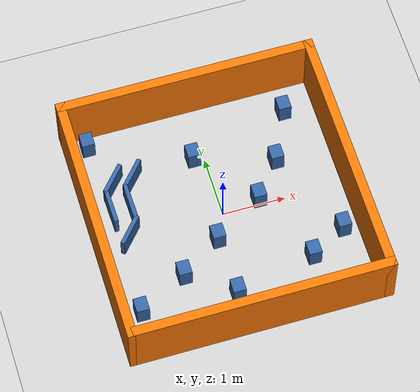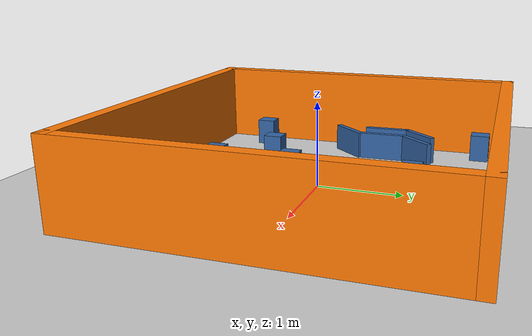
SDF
<sdf version="1.6">
 <world name="default">
  <light name="sun" type="directional">
   <pose>0 0 10 0 -0 0</pose>
   <diffuse>0.8 0.8 0.8 1</diffuse>
   <specular>0.2 0.2 0.2 1</specular>
   <attenuation>
    <range>1000</range>
    <constant>0.9</constant>
    <linear>0.01</linear>
    <quadratic>0.001</quadratic>
   </attenuation>
   <direction>-0.5 0.1 -0.9</direction>
  </light>
  <model name="ground_plane">
   <static>1</static>
   <link name="link">
    <collision name="collision">
     <geometry><plane><normal>0 0 1</normal><size>100 100</size></plane></geometry>
     <surface>
      <contact><collide_bitmask>65535</collide_bitmask></contact>
      <friction><ode><mu>100</mu><mu2>50</mu2></ode></friction>
     </surface>
    </collision>
    <visual name="visual">
     <cast_shadows>0</cast_shadows>
     <geometry><plane><normal>0 0 1</normal><size>100 100</size></plane></geometry>
     <material>
      <script><uri>file://media/materials/scripts/gazebo.material</uri><name>Gazebo/Grey</name></script>
     </material>
    </visual>
   </link>
  </model>
  <gravity>0 0 -9.8</gravity>
  <magnetic_field>6e-06 2.3e-05 -4.2e-05</magnetic_field>
  <atmosphere type="adiabatic"/>
  <physics name="default_physics" default="0" type="ode">
   <max_step_size>0.001</max_step_size>
   <real_time_factor>1</real_time_factor>
   <real_time_update_rate>1000</real_time_update_rate>
  </physics>
  <scene><ambient>0.4 0.4 0.4 1</ambient><background>0.7 0.7 0.7 1</background><shadows>1</shadows></scene>
  <audio><device>default</device></audio>
  <spherical_coordinates>
   <surface_model>EARTH_WGS84</surface_model>
   <latitude_deg>0</latitude_deg>
   <longitude_deg>0</longitude_deg>
   <elevation>0</elevation>
   <heading_deg>0</heading_deg>
  </spherical_coordinates>
  <model name="small">
   <link name="Wall_0">
    <collision name="Wall_0_Collision">
     <geometry><box><size>4.15 0.15 1</size></box></geometry>
     <pose>0 0 0.5 0 -0 0</pose>
    </collision>
    <visual name="Wall_0_Visual">
     <pose>0 0 0.5 0 -0 0</pose>
     <geometry><box><size>4.15 0.15 1</size></box></geometry>
     <material>
      <script><uri>file://media/materials/scripts/gazebo.material</uri><name>Gazebo/Grey</name></script>
      <ambient>0.996078 0.47451 0.0196078 1</ambient>
     </material>
     <meta><layer>0</layer></meta>
    </visual>
    <pose>-2 0 0 0 -0 -1.5708</pose>
   </link>
   <link name="Wall_1">
    <collision name="Wall_1_Collision">
     <geometry><box><size>4.15 0.15 1</size></box></geometry>
     <pose>0 0 0.5 0 -0 0</pose>
    </collision>
    <visual name="Wall_1_Visual">
     <pose>0 0 0.5 0 -0 0</pose>
     <geometry><box><size>4.15 0.15 1</size></box></geometry>
     <material>
      <script><uri>file://media/materials/scripts/gazebo.material</uri><name>Gazebo/Grey</name></script>
      <ambient>0.996078 0.47451 0.0196078 1</ambient>
     </material>
     <meta><layer>0</layer></meta>
    </visual>
    <pose>0 -2 0 0 -0 0</pose>
   </link>
   <link name="Wall_2">
    <collision name="Wall_2_Collision">
     <geometry><box><size>4.15 0.15 1</size></box></geometry>
     <pose>0 0 0.5 0 -0 0</pose>
    </collision>
    <visual name="Wall_2_Visual">
     <pose>0 0 0.5 0 -0 0</pose>
     <geometry><box><size>4.15 0.15 1</size></box></geometry>
     <material>
      <script><uri>file://media/materials/scripts/gazebo.material</uri><name>Gazebo/Grey</name></script>
      <ambient>0.996078 0.47451 0.0196078 1</ambient>
     </material>
     <meta><layer>0</layer></meta>
    </visual>
    <pose>2 0 0 0 -0 1.5708</pose>
   </link>
   <link name="Wall_3">
    <collision name="Wall_3_Collision">
     <geometry><box><size>4.15 0.15 1</size></box></geometry>
     <pose>0 0 0.5 0 -0 0</pose>
    </collision>
    <visual name="Wall_3_Visual">
     <pose>0 0 0.5 0 -0 0</pose>
     <geometry><box><size>4.15 0.15 1</size></box></geometry>
     <material>
      <script><uri>file://media/materials/scripts/gazebo.material</uri><name>Gazebo/Grey</name></script>
      <ambient>0.996078 0.47451 0.0196078 1</ambient>
     </material>
     <meta><layer>0</layer></meta>
    </visual>
    <pose>0 2 0 0 -0 3.14159</pose>
   </link>
   <static>1</static>
  </model>
  <model name="Obstacle1">
   <link name="link_0">
    <inertial>
     <mass>0.0160626</mass>
     <inertia>
      <ixx>0.000232012</ixx>
      <ixy>0</ixy>
      <ixz>0</ixz>
      <iyy>0.000212388</iyy>
      <iyz>0</iyz>
      <izz>0.000126374</izz>
     </inertia>
    </inertial>
    <visual name="visual">
     <geometry><box><size>0.199687 0.233529 0.344666</size></box></geometry>
     <material>
      <lighting>1</lighting>
      <script><uri>file://media/materials/scripts/gazebo.material</uri><name>Gazebo/Grey</name></script>
      <shader type="vertex"><normal_map>__default__</normal_map></shader>
      <ambient>0.204 0.396 0.643 1</ambient>
      <diffuse>0.204 0.396 0.643 1</diffuse>
      <specular>0.204 0.396 0.643 1</specular>
      <emissive>0.204 0.396 0.643 1</emissive>
     </material>
    </visual>
    <collision name="collision">
     <geometry><box><size>0.199687 0.233529 0.344666</size></box></geometry>
     <surface>
      <friction>
       <ode><mu>1</mu><mu2>1</mu2><fdir1>0 0 0</fdir1><slip1>0</slip1><slip2>0</slip2></ode>
       <torsional>
        <coefficient>1</coefficient>
        <patch_radius>0</patch_radius>
        <surface_radius>0</surface_radius>
        <use_patch_radius>1</use_patch_radius>
        <ode><slip>0</slip></ode>
       </torsional>
      </friction>
      <bounce><restitution_coefficient>0</restitution_coefficient><threshold>1e+06</threshold></bounce>
      <contact>
       <collide_without_contact>0</collide_without_contact>
       <collide_without_contact_bitmask>1</collide_without_contact_bitmask>
       <collide_bitmask>1</collide_bitmask>
       <ode>
        <soft_cfm>0</soft_cfm>
        <soft_erp>0.2</soft_erp>
        <kp>1e+13</kp>
        <kd>1</kd>
        <max_vel>0.01</max_vel>
        <min_depth>0</min_depth>
       </ode>
       <bullet>
        <split_impulse>1</split_impulse>
        <split_impulse_penetration_threshold>-0.01</split_impulse_penetration_threshold>
        <soft_cfm>0</soft_cfm>
        <soft_erp>0.2</soft_erp>
        <kp>1e+13</kp>
        <kd>1</kd>
       </bullet>
      </contact>
     </surface>
    </collision>
   </link>
   <static>0</static>
   <pose>-0.176645 1.05764 0.161787 0 -0 0</pose>
  </model>
  <model name="Obstacle1_clone">
   <link name="link_0">
    <inertial>
     <mass>0.0160626</mass>
     <inertia>
      <ixx>0.000232012</ixx>
      <ixy>0</ixy>
      <ixz>0</ixz>
      <iyy>0.000212388</iyy>
      <iyz>0</iyz>
      <izz>0.000126374</izz>
     </inertia>
    </inertial>
    <visual name="visual">
     <geometry><box><size>0.199687 0.233529 0.344666</size></box></geometry>
     <material>
      <lighting>1</lighting>
      <script><uri>file://media/materials/scripts/gazebo.material</uri><name>Gazebo/Grey</name></script>
      <shader type="vertex"><normal_map>__default__</normal_map></shader>
      <ambient>0.204 0.396 0.643 1</ambient>
      <diffuse>0.204 0.396 0.643 1</diffuse>
      <specular>0.204 0.396 0.643 1</specular>
      <emissive>0.204 0.396 0.643 1</emissive>
     </material>
    </visual>
    <collision name="collision">
     <geometry><box><size>0.199687 0.233529 0.344666</size></box></geometry>
     <surface>
      <friction>
       <ode><mu>1</mu><mu2>1</mu2><fdir1>0 0 0</fdir1><slip1>0</slip1><slip2>0</slip2></ode>
       <torsional>
        <coefficient>1</coefficient>
        <patch_radius>0</patch_radius>
        <surface_radius>0</surface_radius>
        <use_patch_radius>1</use_patch_radius>
        <ode><slip>0</slip></ode>
       </torsional>
      </friction>
      <bounce><restitution_coefficient>0</restitution_coefficient><threshold>1e+06</threshold></bounce>
      <contact>
       <collide_without_contact>0</collide_without_contact>
       <collide_without_contact_bitmask>1</collide_without_contact_bitmask>
       <collide_bitmask>1</collide_bitmask>
       <ode>
        <soft_cfm>0</soft_cfm>
        <soft_erp>0.2</soft_erp>
        <kp>1e+13</kp>
        <kd>1</kd>
        <max_vel>0.01</max_vel>
        <min_depth>0</min_depth>
       </ode>
       <bullet>
        <split_impulse>1</split_impulse>
        <split_impulse_penetration_threshold>-0.01</split_impulse_penetration_threshold>
        <soft_cfm>0</soft_cfm>
        <soft_erp>0.2</soft_erp>
        <kp>1e+13</kp>
        <kd>1</kd>
       </bullet>
      </contact>
     </surface>
    </collision>
   </link>
   <static>0</static>
   <pose>0.598237 0.083541 0.161787 0 -0 0</pose>
  </model>
  <model name="Obstacle1_clone_0">
   <link name="link_0">
    <inertial>
     <mass>0.0160626</mass>
     <inertia>
      <ixx>0.000232012</ixx>
      <ixy>0</ixy>
      <ixz>0</ixz>
      <iyy>0.000212388</iyy>
      <iyz>0</iyz>
      <izz>0.000126374</izz>
     </inertia>
    </inertial>
    <visual name="visual">
     <geometry><box><size>0.199687 0.233529 0.344666</size></box></geometry>
     <material>
      <lighting>1</lighting>
      <script><uri>file://media/materials/scripts/gazebo.material</uri><name>Gazebo/Grey</name></script>
      <shader type="vertex"><normal_map>__default__</normal_map></shader>
      <ambient>0.204 0.396 0.643 1</ambient>
      <diffuse>0.204 0.396 0.643 1</diffuse>
      <specular>0.204 0.396 0.643 1</specular>
      <emissive>0.204 0.396 0.643 1</emissive>
     </material>
    </visual>
    <collision name="collision">
     <geometry><box><size>0.199687 0.233529 0.344666</size></box></geometry>
     <surface>
      <friction>
       <ode><mu>1</mu><mu2>1</mu2><fdir1>0 0 0</fdir1><slip1>0</slip1><slip2>0</slip2></ode>
       <torsional>
        <coefficient>1</coefficient>
        <patch_radius>0</patch_radius>
        <surface_radius>0</surface_radius>
        <use_patch_radius>1</use_patch_radius>
        <ode><slip>0</slip></ode>
       </torsional>
      </friction>
      <bounce><restitution_coefficient>0</restitution_coefficient><threshold>1e+06</threshold></bounce>
      <contact>
       <collide_without_contact>0</collide_without_contact>
       <collide_without_contact_bitmask>1</collide_without_contact_bitmask>
       <collide_bitmask>1</collide_bitmask>
       <ode>
        <soft_cfm>0</soft_cfm>
        <soft_erp>0.2</soft_erp>
        <kp>1e+13</kp>
        <kd>1</kd>
        <max_vel>0.01</max_vel>
        <min_depth>0</min_depth>
       </ode>
       <bullet>
        <split_impulse>1</split_impulse>
        <split_impulse_penetration_threshold>-0.01</split_impulse_penetration_threshold>
        <soft_cfm>0</soft_cfm>
        <soft_erp>0.2</soft_erp>
        <kp>1e+13</kp>
        <kd>1</kd>
       </bullet>
      </contact>
     </surface>
    </collision>
   </link>
   <static>0</static>
   <pose>-0.883639 -0.871921 0.161787 0 -0 0</pose>
  </model>
  <model name="Obstacle1_clone_1">
   <link name="link_0">
    <inertial>
     <mass>0.0160626</mass>
     <inertia>
      <ixx>0.000232012</ixx>
      <ixy>0</ixy>
      <ixz>0</ixz>
      <iyy>0.000212388</iyy>
      <iyz>0</iyz>
      <izz>0.000126374</izz>
     </inertia>
    </inertial>
    <visual name="visual">
     <geometry><box><size>0.199687 0.233529 0.344666</size></box></geometry>
     <material>
      <lighting>1</lighting>
      <script><uri>file://media/materials/scripts/gazebo.material</uri><name>Gazebo/Grey</name></script>
      <shader type="vertex"><normal_map>__default__</normal_map></shader>
      <ambient>0.204 0.396 0.643 1</ambient>
      <diffuse>0.204 0.396 0.643 1</diffuse>
      <specular>0.204 0.396 0.643 1</specular>
      <emissive>0.204 0.396 0.643 1</emissive>
     </material>
    </visual>
    <collision name="collision">
     <geometry><box><size>0.199687 0.233529 0.344666</size></box></geometry>
     <surface>
      <friction>
       <ode><mu>1</mu><mu2>1</mu2><fdir1>0 0 0</fdir1><slip1>0</slip1><slip2>0</slip2></ode>
       <torsional>
        <coefficient>1</coefficient>
        <patch_radius>0</patch_radius>
        <surface_radius>0</surface_radius>
        <use_patch_radius>1</use_patch_radius>
        <ode><slip>0</slip></ode>
       </torsional>
      </friction>
      <bounce><restitution_coefficient>0</restitution_coefficient><threshold>1e+06</threshold></bounce>
      <contact>
       <collide_without_contact>0</collide_without_contact>
       <collide_without_contact_bitmask>1</collide_without_contact_bitmask>
       <collide_bitmask>1</collide_bitmask>
       <ode>
        <soft_cfm>0</soft_cfm>
        <soft_erp>0.2</soft_erp>
        <kp>1e+13</kp>
        <kd>1</kd>
        <max_vel>0.01</max_vel>
        <min_depth>0</min_depth>
       </ode>
       <bullet>
        <split_impulse>1</split_impulse>
        <split_impulse_penetration_threshold>-0.01</split_impulse_penetration_threshold>
        <soft_cfm>0</soft_cfm>
        <soft_erp>0.2</soft_erp>
        <kp>1e+13</kp>
        <kd>1</kd>
       </bullet>
      </contact>
     </surface>
    </collision>
   </link>
   <static>0</static>
   <pose>-1.69951 1.71749 0.161787 0 -0 0</pose>
  </model>
  <model name="Obstacle1_clone_2">
   <link name="link_0">
    <inertial>
     <mass>0.0160626</mass>
     <inertia>
      <ixx>0.000232012</ixx>
      <ixy>0</ixy>
      <ixz>0</ixz>
      <iyy>0.000212388</iyy>
      <iyz>0</iyz>
      <izz>0.000126374</izz>
     </inertia>
    </inertial>
    <visual name="visual">
     <geometry><box><size>0.199687 0.233529 0.344666</size></box></geometry>
     <material>
      <lighting>1</lighting>
      <script><uri>file://media/materials/scripts/gazebo.material</uri><name>Gazebo/Grey</name></script>
      <shader type="vertex"><normal_map>__default__</normal_map></shader>
      <ambient>0.204 0.396 0.643 1</ambient>
      <diffuse>0.204 0.396 0.643 1</diffuse>
      <specular>0.204 0.396 0.643 1</specular>
      <emissive>0.204 0.396 0.643 1</emissive>
     </material>
    </visual>
    <collision name="collision">
     <geometry><box><size>0.199687 0.233529 0.344666</size></box></geometry>
     <surface>
      <friction>
       <ode><mu>1</mu><mu2>1</mu2><fdir1>0 0 0</fdir1><slip1>0</slip1><slip2>0</slip2></ode>
       <torsional>
        <coefficient>1</coefficient>
        <patch_radius>0</patch_radius>
        <surface_radius>0</surface_radius>
        <use_patch_radius>1</use_patch_radius>
        <ode><slip>0</slip></ode>
       </torsional>
      </friction>
      <bounce><restitution_coefficient>0</restitution_coefficient><threshold>1e+06</threshold></bounce>
      <contact>
       <collide_without_contact>0</collide_without_contact>
       <collide_without_contact_bitmask>1</collide_without_contact_bitmask>
       <collide_bitmask>1</collide_bitmask>
       <ode>
        <soft_cfm>0</soft_cfm>
        <soft_erp>0.2</soft_erp>
        <kp>1e+13</kp>
        <kd>1</kd>
        <max_vel>0.01</max_vel>
        <min_depth>0</min_depth>
       </ode>
       <bullet>
        <split_impulse>1</split_impulse>
        <split_impulse_penetration_threshold>-0.01</split_impulse_penetration_threshold>
        <soft_cfm>0</soft_cfm>
        <soft_erp>0.2</soft_erp>
        <kp>1e+13</kp>
        <kd>1</kd>
       </bullet>
      </contact>
     </surface>
    </collision>
   </link>
   <static>0</static>
   <pose>-0.21086 -0.418117 0.161787 0 -0 0</pose>
  </model>
  <model name="Obstacle1_clone_3">
   <link name="link_0">
    <inertial>
     <mass>0.0160626</mass>
     <inertia>
      <ixx>0.000232012</ixx>
      <ixy>0</ixy>
      <ixz>0</ixz>
      <iyy>0.000212388</iyy>
      <iyz>0</iyz>
      <izz>0.000126374</izz>
     </inertia>
    </inertial>
    <visual name="visual">
     <geometry><box><size>0.199687 0.233529 0.344666</size></box></geometry>
     <material>
      <lighting>1</lighting>
      <script><uri>file://media/materials/scripts/gazebo.material</uri><name>Gazebo/Grey</name></script>
      <shader type="vertex"><normal_map>__default__</normal_map></shader>
      <ambient>0.204 0.396 0.643 1</ambient>
      <diffuse>0.204 0.396 0.643 1</diffuse>
      <specular>0.204 0.396 0.643 1</specular>
      <emissive>0.204 0.396 0.643 1</emissive>
     </material>
    </visual>
    <collision name="collision">
     <geometry><box><size>0.199687 0.233529 0.344666</size></box></geometry>
     <surface>
      <friction>
       <ode><mu>1</mu><mu2>1</mu2><fdir1>0 0 0</fdir1><slip1>0</slip1><slip2>0</slip2></ode>
       <torsional>
        <coefficient>1</coefficient>
        <patch_radius>0</patch_radius>
        <surface_radius>0</surface_radius>
        <use_patch_radius>1</use_patch_radius>
        <ode><slip>0</slip></ode>
       </torsional>
      </friction>
      <bounce><restitution_coefficient>0</restitution_coefficient><threshold>1e+06</threshold></bounce>
      <contact>
       <collide_without_contact>0</collide_without_contact>
       <collide_without_contact_bitmask>1</collide_without_contact_bitmask>
       <collide_bitmask>1</collide_bitmask>
       <ode>
        <soft_cfm>0</soft_cfm>
        <soft_erp>0.2</soft_erp>
        <kp>1e+13</kp>
        <kd>1</kd>
        <max_vel>0.01</max_vel>
        <min_depth>0</min_depth>
       </ode>
       <bullet>
        <split_impulse>1</split_impulse>
        <split_impulse_penetration_threshold>-0.01</split_impulse_penetration_threshold>
        <soft_cfm>0</soft_cfm>
        <soft_erp>0.2</soft_erp>
        <kp>1e+13</kp>
        <kd>1</kd>
       </bullet>
      </contact>
     </surface>
    </collision>
   </link>
   <static>0</static>
   <pose>1.10388 -1.10429 0.161787 0 -0 0</pose>
  </model>
  <model name="Obstacle1_clone_4">
   <link name="link_0">
    <inertial>
     <mass>0.0160626</mass>
     <inertia>
      <ixx>0.000232012</ixx>
      <ixy>0</ixy>
      <ixz>0</ixz>
      <iyy>0.000212388</iyy>
      <iyz>0</iyz>
      <izz>0.000126374</izz>
     </inertia>
    </inertial>
    <visual name="visual">
     <geometry><box><size>0.525188 0.067149 0.344666</size></box></geometry>
     <material>
      <lighting>1</lighting>
      <script><uri>file://media/materials/scripts/gazebo.material</uri><name>Gazebo/Grey</name></script>
      <shader type="vertex"><normal_map>__default__</normal_map></shader>
      <ambient>0.204 0.396 0.643 1</ambient>
      <diffuse>0.204 0.396 0.643 1</diffuse>
      <specular>0.204 0.396 0.643 1</specular>
      <emissive>0.204 0.396 0.643 1</emissive>
     </material>
    </visual>
    <collision name="collision">
     <geometry><box><size>0.525188 0.067149 0.344666</size></box></geometry>
     <surface>
      <friction>
       <ode><mu>1</mu><mu2>1</mu2><fdir1>0 0 0</fdir1><slip1>0</slip1><slip2>0</slip2></ode>
       <torsional>
        <coefficient>1</coefficient>
        <patch_radius>0</patch_radius>
        <surface_radius>0</surface_radius>
        <use_patch_radius>1</use_patch_radius>
        <ode><slip>0</slip></ode>
       </torsional>
      </friction>
      <bounce><restitution_coefficient>0</restitution_coefficient><threshold>1e+06</threshold></bounce>
      <contact>
       <collide_without_contact>0</collide_without_contact>
       <collide_without_contact_bitmask>1</collide_without_contact_bitmask>
       <collide_bitmask>1</collide_bitmask>
       <ode>
        <soft_cfm>0</soft_cfm>
        <soft_erp>0.2</soft_erp>
        <kp>1e+13</kp>
        <kd>1</kd>
        <max_vel>0.01</max_vel>
        <min_depth>0</min_depth>
       </ode>
       <bullet>
        <split_impulse>1</split_impulse>
        <split_impulse_penetration_threshold>-0.01</split_impulse_penetration_threshold>
        <soft_cfm>0</soft_cfm>
        <soft_erp>0.2</soft_erp>
        <kp>1e+13</kp>
        <kd>1</kd>
       </bullet>
      </contact>
     </surface>
    </collision>
   </link>
   <static>0</static>
   <pose>-1.49868 0.937012 0.161787 0 -0 0.854446</pose>
  </model>
  <model name="Obstacle1_clone_4_clone">
   <link name="link_0">
    <inertial>
     <mass>0.0160626</mass>
     <inertia>
      <ixx>0.000232012</ixx>
      <ixy>0</ixy>
      <ixz>0</ixz>
      <iyy>0.000212388</iyy>
      <iyz>0</iyz>
      <izz>0.000126374</izz>
     </inertia>
    </inertial>
    <visual name="visual">
     <geometry><box><size>0.584747 0.067149 0.344666</size></box></geometry>
     <material>
      <lighting>1</lighting>
      <script><uri>file://media/materials/scripts/gazebo.material</uri><name>Gazebo/Grey</name></script>
      <shader type="vertex"><normal_map>__default__</normal_map></shader>
      <ambient>0.204 0.396 0.643 1</ambient>
      <diffuse>0.204 0.396 0.643 1</diffuse>
      <specular>0.204 0.396 0.643 1</specular>
      <emissive>0.204 0.396 0.643 1</emissive>
     </material>
    </visual>
    <collision name="collision">
     <geometry><box><size>0.584747 0.067149 0.344666</size></box></geometry>
     <surface>
      <friction>
       <ode><mu>1</mu><mu2>1</mu2><fdir1>0 0 0</fdir1><slip1>0</slip1><slip2>0</slip2></ode>
       <torsional>
        <coefficient>1</coefficient>
        <patch_radius>0</patch_radius>
        <surface_radius>0</surface_radius>
        <use_patch_radius>1</use_patch_radius>
        <ode><slip>0</slip></ode>
       </torsional>
      </friction>
      <bounce><restitution_coefficient>0</restitution_coefficient><threshold>1e+06</threshold></bounce>
      <contact>
       <collide_without_contact>0</collide_without_contact>
       <collide_without_contact_bitmask>1</collide_without_contact_bitmask>
       <collide_bitmask>1</collide_bitmask>
       <ode>
        <soft_cfm>0</soft_cfm>
        <soft_erp>0.2</soft_erp>
        <kp>1e+13</kp>
        <kd>1</kd>
        <max_vel>0.01</max_vel>
        <min_depth>0</min_depth>
       </ode>
       <bullet>
        <split_impulse>1</split_impulse>
        <split_impulse_penetration_threshold>-0.01</split_impulse_penetration_threshold>
        <soft_cfm>0</soft_cfm>
        <soft_erp>0.2</soft_erp>
        <kp>1e+13</kp>
        <kd>1</kd>
       </bullet>
      </contact>
     </surface>
    </collision>
   </link>
   <static>0</static>
   <pose>-1.6489 0.483125 0.161787 0 -0 1.58693</pose>
  </model>
  <model name="Obstacle1_clone_4_clone_clone">
   <link name="link_0">
    <inertial>
     <mass>0.0160626</mass>
     <inertia>
      <ixx>0.000232012</ixx>
      <ixy>0</ixy>
      <ixz>0</ixz>
      <iyy>0.000212388</iyy>
      <iyz>0</iyz>
      <izz>0.000126374</izz>
     </inertia>
    </inertial>
    <visual name="visual">
     <geometry><box><size>0.584746 0.067149 0.344666</size></box></geometry>
     <material>
      <lighting>1</lighting>
      <script><uri>file://media/materials/scripts/gazebo.material</uri><name>Gazebo/Grey</name></script>
      <shader type="vertex"><normal_map>__default__</normal_map></shader>
      <ambient>0.204 0.396 0.643 1</ambient>
      <diffuse>0.204 0.396 0.643 1</diffuse>
      <specular>0.204 0.396 0.643 1</specular>
      <emissive>0.204 0.396 0.643 1</emissive>
     </material>
    </visual>
    <collision name="collision">
     <geometry><box><size>0.584746 0.067149 0.344666</size></box></geometry>
     <surface>
      <friction>
       <ode><mu>1</mu><mu2>1</mu2><fdir1>0 0 0</fdir1><slip1>0</slip1><slip2>0</slip2></ode>
       <torsional>
        <coefficient>1</coefficient>
        <patch_radius>0</patch_radius>
        <surface_radius>0</surface_radius>
        <use_patch_radius>1</use_patch_radius>
        <ode><slip>0</slip></ode>
       </torsional>
      </friction>
      <bounce><restitution_coefficient>0</restitution_coefficient><threshold>1e+06</threshold></bounce>
      <contact>
       <collide_without_contact>0</collide_without_contact>
       <collide_without_contact_bitmask>1</collide_without_contact_bitmask>
       <collide_bitmask>1</collide_bitmask>
       <ode>
        <soft_cfm>0</soft_cfm>
        <soft_erp>0.2</soft_erp>
        <kp>1e+13</kp>
        <kd>1</kd>
        <max_vel>0.01</max_vel>
        <min_depth>0</min_depth>
       </ode>
       <bullet>
        <split_impulse>1</split_impulse>
        <split_impulse_penetration_threshold>-0.01</split_impulse_penetration_threshold>
        <soft_cfm>0</soft_cfm>
        <soft_erp>0.2</soft_erp>
        <kp>1e+13</kp>
        <kd>1</kd>
       </bullet>
      </contact>
     </surface>
    </collision>
   </link>
   <static>0</static>
   <pose>-1.34273 0.476604 0.161787 0 -0 1.58693</pose>
  </model>
  <model name="Obstacle1_clone_0_clone">
   <link name="link_0">
    <inertial>
     <mass>0.0160626</mass>
     <inertia>
      <ixx>0.000232012</ixx>
      <ixy>0</ixy>
      <ixz>0</ixz>
      <iyy>0.000212388</iyy>
      <iyz>0</iyz>
      <izz>0.000126374</izz>
     </inertia>
    </inertial>
    <visual name="visual">
     <geometry><box><size>0.199687 0.233529 0.344666</size></box></geometry>
     <material>
      <lighting>1</lighting>
      <script><uri>file://media/materials/scripts/gazebo.material</uri><name>Gazebo/Grey</name></script>
      <shader type="vertex"><normal_map>__default__</normal_map></shader>
      <ambient>0.204 0.396 0.643 1</ambient>
      <diffuse>0.204 0.396 0.643 1</diffuse>
      <specular>0.204 0.396 0.643 1</specular>
      <emissive>0.204 0.396 0.643 1</emissive>
     </material>
    </visual>
    <collision name="collision">
     <geometry><box><size>0.199687 0.233529 0.344666</size></box></geometry>
     <surface>
      <friction>
       <ode><mu>1</mu><mu2>1</mu2><fdir1>0 0 0</fdir1><slip1>0</slip1><slip2>0</slip2></ode>
       <torsional>
        <coefficient>1</coefficient>
        <patch_radius>0</patch_radius>
        <surface_radius>0</surface_radius>
        <use_patch_radius>1</use_patch_radius>
        <ode><slip>0</slip></ode>
       </torsional>
      </friction>
      <bounce><restitution_coefficient>0</restitution_coefficient><threshold>1e+06</threshold></bounce>
      <contact>
       <collide_without_contact>0</collide_without_contact>
       <collide_without_contact_bitmask>1</collide_without_contact_bitmask>
       <collide_bitmask>1</collide_bitmask>
       <ode>
        <soft_cfm>0</soft_cfm>
        <soft_erp>0.2</soft_erp>
        <kp>1e+13</kp>
        <kd>1</kd>
        <max_vel>0.01</max_vel>
        <min_depth>0</min_depth>
       </ode>
       <bullet>
        <split_impulse>1</split_impulse>
        <split_impulse_penetration_threshold>-0.01</split_impulse_penetration_threshold>
        <soft_cfm>0</soft_cfm>
        <soft_erp>0.2</soft_erp>
        <kp>1e+13</kp>
        <kd>1</kd>
       </bullet>
      </contact>
     </surface>
    </collision>
   </link>
   <static>0</static>
   <pose>-1.66921 -1.28106 0.161787 0 -0 0</pose>
  </model>
  <model name="Obstacle1_clone_0_clone_0">
   <link name="link_0">
    <inertial>
     <mass>0.0160626</mass>
     <inertia>
      <ixx>0.000232012</ixx>
      <ixy>0</ixy>
      <ixz>0</ixz>
      <iyy>0.000212388</iyy>
      <iyz>0</iyz>
      <izz>0.000126374</izz>
     </inertia>
    </inertial>
    <visual name="visual">
     <geometry><box><size>0.199687 0.233529 0.344666</size></box></geometry>
     <material>
      <lighting>1</lighting>
      <script><uri>file://media/materials/scripts/gazebo.material</uri><name>Gazebo/Grey</name></script>
      <shader type="vertex"><normal_map>__default__</normal_map></shader>
      <ambient>0.204 0.396 0.643 1</ambient>
      <diffuse>0.204 0.396 0.643 1</diffuse>
      <specular>0.204 0.396 0.643 1</specular>
      <emissive>0.204 0.396 0.643 1</emissive>
     </material>
    </visual>
    <collision name="collision">
     <geometry><box><size>0.199687 0.233529 0.344666</size></box></geometry>
     <surface>
      <friction>
       <ode><mu>1</mu><mu2>1</mu2><fdir1>0 0 0</fdir1><slip1>0</slip1><slip2>0</slip2></ode>
       <torsional>
        <coefficient>1</coefficient>
        <patch_radius>0</patch_radius>
        <surface_radius>0</surface_radius>
        <use_patch_radius>1</use_patch_radius>
        <ode><slip>0</slip></ode>
       </torsional>
      </friction>
      <bounce><restitution_coefficient>0</restitution_coefficient><threshold>1e+06</threshold></bounce>
      <contact>
       <collide_without_contact>0</collide_without_contact>
       <collide_without_contact_bitmask>1</collide_without_contact_bitmask>
       <collide_bitmask>1</collide_bitmask>
       <ode>
        <soft_cfm>0</soft_cfm>
        <soft_erp>0.2</soft_erp>
        <kp>1e+13</kp>
        <kd>1</kd>
        <max_vel>0.01</max_vel>
        <min_depth>0</min_depth>
       </ode>
       <bullet>
        <split_impulse>1</split_impulse>
        <split_impulse_penetration_threshold>-0.01</split_impulse_penetration_threshold>
        <soft_cfm>0</soft_cfm>
        <soft_erp>0.2</soft_erp>
        <kp>1e+13</kp>
        <kd>1</kd>
       </bullet>
      </contact>
     </surface>
    </collision>
   </link>
   <static>0</static>
   <pose>1.43279 1.47522 0.161787 0 -0 0</pose>
  </model>
  <model name="Obstacle1_clone_0_clone_1">
   <link name="link_0">
    <inertial>
     <mass>0.0160626</mass>
     <inertia>
      <ixx>0.000232012</ixx>
      <ixy>0</ixy>
      <ixz>0</ixz>
      <iyy>0.000212388</iyy>
      <iyz>0</iyz>
      <izz>0.000126374</izz>
     </inertia>
    </inertial>
    <visual name="visual">
     <geometry><box><size>0.199687 0.233529 0.344666</size></box></geometry>
     <material>
      <lighting>1</lighting>
      <script><uri>file://media/materials/scripts/gazebo.material</uri><name>Gazebo/Grey</name></script>
      <shader type="vertex"><normal_map>__default__</normal_map></shader>
      <ambient>0.204 0.396 0.643 1</ambient>
      <diffuse>0.204 0.396 0.643 1</diffuse>
      <specular>0.204 0.396 0.643 1</specular>
      <emissive>0.204 0.396 0.643 1</emissive>
     </material>
    </visual>
    <collision name="collision">
     <geometry><box><size>0.199687 0.233529 0.344666</size></box></geometry>
     <surface>
      <friction>
       <ode><mu>1</mu><mu2>1</mu2><fdir1>0 0 0</fdir1><slip1>0</slip1><slip2>0</slip2></ode>
       <torsional>
        <coefficient>1</coefficient>
        <patch_radius>0</patch_radius>
        <surface_radius>0</surface_radius>
        <use_patch_radius>1</use_patch_radius>
        <ode><slip>0</slip></ode>
       </torsional>
      </friction>
      <bounce><restitution_coefficient>0</restitution_coefficient><threshold>1e+06</threshold></bounce>
      <contact>
       <collide_without_contact>0</collide_without_contact>
       <collide_without_contact_bitmask>1</collide_without_contact_bitmask>
       <collide_bitmask>1</collide_bitmask>
       <ode>
        <soft_cfm>0</soft_cfm>
        <soft_erp>0.2</soft_erp>
        <kp>1e+13</kp>
        <kd>1</kd>
        <max_vel>0.01</max_vel>
        <min_depth>0</min_depth>
       </ode>
       <bullet>
        <split_impulse>1</split_impulse>
        <split_impulse_penetration_threshold>-0.01</split_impulse_penetration_threshold>
        <soft_cfm>0</soft_cfm>
        <soft_erp>0.2</soft_erp>
        <kp>1e+13</kp>
        <kd>1</kd>
       </bullet>
      </contact>
     </surface>
    </collision>
   </link>
   <static>0</static>
   <pose>1.05734 0.660602 0.161787 0 -0 0</pose>
  </model>
  <model name="Obstacle1_clone_3_clone">
   <link name="link_0">
    <inertial>
     <mass>0.0160626</mass>
     <inertia>
      <ixx>0.000232012</ixx>
      <ixy>0</ixy>
      <ixz>0</ixz>
      <iyy>0.000212388</iyy>
      <iyz>0</iyz>
      <izz>0.000126374</izz>
     </inertia>
    </inertial>
    <visual name="visual">
     <geometry><box><size>0.199687 0.233529 0.344666</size></box></geometry>
     <material>
      <lighting>1</lighting>
      <script><uri>file://media/materials/scripts/gazebo.material</uri><name>Gazebo/Grey</name></script>
      <shader type="vertex"><normal_map>__default__</normal_map></shader>
      <ambient>0.204 0.396 0.643 1</ambient>
      <diffuse>0.204 0.396 0.643 1</diffuse>
      <specular>0.204 0.396 0.643 1</specular>
      <emissive>0.204 0.396 0.643 1</emissive>
     </material>
    </visual>
    <collision name="collision">
     <geometry><box><size>0.199687 0.233529 0.344666</size></box></geometry>
     <surface>
      <friction>
       <ode><mu>1</mu><mu2>1</mu2><fdir1>0 0 0</fdir1><slip1>0</slip1><slip2>0</slip2></ode>
       <torsional>
        <coefficient>1</coefficient>
        <patch_radius>0</patch_radius>
        <surface_radius>0</surface_radius>
        <use_patch_radius>1</use_patch_radius>
        <ode><slip>0</slip></ode>
       </torsional>
      </friction>
      <bounce><restitution_coefficient>0</restitution_coefficient><threshold>1e+06</threshold></bounce>
      <contact>
       <collide_without_contact>0</collide_without_contact>
       <collide_without_contact_bitmask>1</collide_without_contact_bitmask>
       <collide_bitmask>1</collide_bitmask>
       <ode>
        <soft_cfm>0</soft_cfm>
        <soft_erp>0.2</soft_erp>
        <kp>1e+13</kp>
        <kd>1</kd>
        <max_vel>0.01</max_vel>
        <min_depth>0</min_depth>
       </ode>
       <bullet>
        <split_impulse>1</split_impulse>
        <split_impulse_penetration_threshold>-0.01</split_impulse_penetration_threshold>
        <soft_cfm>0</soft_cfm>
        <soft_erp>0.2</soft_erp>
        <kp>1e+13</kp>
        <kd>1</kd>
       </bullet>
      </contact>
     </surface>
    </collision>
   </link>
   <static>0</static>
   <pose>-0.185439 -1.38492 0.161787 0 -0 0</pose>
  </model>
  <model name="Obstacle1_clone_3_clone_0">
   <link name="link_0">
    <inertial>
     <mass>0.0160626</mass>
     <inertia>
      <ixx>0.000232012</ixx>
      <ixy>0</ixy>
      <ixz>0</ixz>
      <iyy>0.000212388</iyy>
      <iyz>0</iyz>
      <izz>0.000126374</izz>
     </inertia>
    </inertial>
    <visual name="visual">
     <geometry><box><size>0.199687 0.233529 0.344666</size></box></geometry>
     <material>
      <lighting>1</lighting>
      <script><uri>file://media/materials/scripts/gazebo.material</uri><name>Gazebo/Grey</name></script>
      <shader type="vertex"><normal_map>__default__</normal_map></shader>
      <ambient>0.204 0.396 0.643 1</ambient>
      <diffuse>0.204 0.396 0.643 1</diffuse>
      <specular>0.204 0.396 0.643 1</specular>
      <emissive>0.204 0.396 0.643 1</emissive>
     </material>
    </visual>
    <collision name="collision">
     <geometry><box><size>0.199687 0.233529 0.344666</size></box></geometry>
     <surface>
      <friction>
       <ode><mu>1</mu><mu2>1</mu2><fdir1>0 0 0</fdir1><slip1>0</slip1><slip2>0</slip2></ode>
       <torsional>
        <coefficient>1</coefficient>
        <patch_radius>0</patch_radius>
        <surface_radius>0</surface_radius>
        <use_patch_radius>1</use_patch_radius>
        <ode><slip>0</slip></ode>
       </torsional>
      </friction>
      <bounce><restitution_coefficient>0</restitution_coefficient><threshold>1e+06</threshold></bounce>
      <contact>
       <collide_without_contact>0</collide_without_contact>
       <collide_without_contact_bitmask>1</collide_without_contact_bitmask>
       <collide_bitmask>1</collide_bitmask>
       <ode>
        <soft_cfm>0</soft_cfm>
        <soft_erp>0.2</soft_erp>
        <kp>1e+13</kp>
        <kd>1</kd>
        <max_vel>0.01</max_vel>
        <min_depth>0</min_depth>
       </ode>
       <bullet>
        <split_impulse>1</split_impulse>
        <split_impulse_penetration_threshold>-0.01</split_impulse_penetration_threshold>
        <soft_cfm>0</soft_cfm>
        <soft_erp>0.2</soft_erp>
        <kp>1e+13</kp>
        <kd>1</kd>
       </bullet>
      </contact>
     </surface>
    </collision>
   </link>
   <static>0</static>
   <pose>1.6865 -0.778907 0.161787 0 -0 0</pose>
  </model>
  <model name="Obstacle1_clone_4_clone_0">
   <link name="link_0">
    <inertial>
     <mass>0.0160626</mass>
     <inertia>
      <ixx>0.000232012</ixx>
      <ixy>0</ixy>
      <ixz>0</ixz>
      <iyy>0.000212388</iyy>
      <iyz>0</iyz>
      <izz>0.000126374</izz>
     </inertia>
    </inertial>
    <visual name="visual">
     <geometry><box><size>0.525189 0.067149 0.344666</size></box></geometry>
     <material>
      <lighting>1</lighting>
      <script><uri>file://media/materials/scripts/gazebo.material</uri><name>Gazebo/Grey</name></script>
      <shader type="vertex"><normal_map>__default__</normal_map></shader>
      <ambient>0.204 0.396 0.643 1</ambient>
      <diffuse>0.204 0.396 0.643 1</diffuse>
      <specular>0.204 0.396 0.643 1</specular>
      <emissive>0.204 0.396 0.643 1</emissive>
     </material>
    </visual>
    <collision name="collision">
     <geometry><box><size>0.525189 0.067149 0.344666</size></box></geometry>
     <surface>
      <friction>
       <ode><mu>1</mu><mu2>1</mu2><fdir1>0 0 0</fdir1><slip1>0</slip1><slip2>0</slip2></ode>
       <torsional>
        <coefficient>1</coefficient>
        <patch_radius>0</patch_radius>
        <surface_radius>0</surface_radius>
        <use_patch_radius>1</use_patch_radius>
        <ode><slip>0</slip></ode>
       </torsional>
      </friction>
      <bounce><restitution_coefficient>0</restitution_coefficient><threshold>1e+06</threshold></bounce>
      <contact>
       <collide_without_contact>0</collide_without_contact>
       <collide_without_contact_bitmask>1</collide_without_contact_bitmask>
       <collide_bitmask>1</collide_bitmask>
       <ode>
        <soft_cfm>0</soft_cfm>
        <soft_erp>0.2</soft_erp>
        <kp>1e+13</kp>
        <kd>1</kd>
        <max_vel>0.01</max_vel>
        <min_depth>0</min_depth>
       </ode>
       <bullet>
        <split_impulse>1</split_impulse>
        <split_impulse_penetration_threshold>-0.01</split_impulse_penetration_threshold>
        <soft_cfm>0</soft_cfm>
        <soft_erp>0.2</soft_erp>
        <kp>1e+13</kp>
        <kd>1</kd>
       </bullet>
      </contact>
     </surface>
    </collision>
   </link>
   <static>0</static>
   <pose>-1.18906 0.937767 0.161787 0 -0 0.854446</pose>
  </model>
  <model name="Obstacle1_clone_4_clone_1">
   <link name="link_0">
    <inertial>
     <mass>0.0160626</mass>
     <inertia>
      <ixx>0.000232012</ixx>
      <ixy>0</ixy>
      <ixz>0</ixz>
      <iyy>0.000212388</iyy>
      <iyz>0</iyz>
      <izz>0.000126374</izz>
     </inertia>
    </inertial>
    <visual name="visual">
     <geometry><box><size>0.525189 0.067149 0.344666</size></box></geometry>
     <material>
      <lighting>1</lighting>
      <script><uri>file://media/materials/scripts/gazebo.material</uri><name>Gazebo/Grey</name></script>
      <shader type="vertex"><normal_map>__default__</normal_map></shader>
      <ambient>0.204 0.396 0.643 1</ambient>
      <diffuse>0.204 0.396 0.643 1</diffuse>
      <specular>0.204 0.396 0.643 1</specular>
      <emissive>0.204 0.396 0.643 1</emissive>
     </material>
    </visual>
    <collision name="collision">
     <geometry><box><size>0.525189 0.067149 0.344666</size></box></geometry>
     <surface>
      <friction>
       <ode><mu>1</mu><mu2>1</mu2><fdir1>0 0 0</fdir1><slip1>0</slip1><slip2>0</slip2></ode>
       <torsional>
        <coefficient>1</coefficient>
        <patch_radius>0</patch_radius>
        <surface_radius>0</surface_radius>
        <use_patch_radius>1</use_patch_radius>
        <ode><slip>0</slip></ode>
       </torsional>
      </friction>
      <bounce><restitution_coefficient>0</restitution_coefficient><threshold>1e+06</threshold></bounce>
      <contact>
       <collide_without_contact>0</collide_without_contact>
       <collide_without_contact_bitmask>1</collide_without_contact_bitmask>
       <collide_bitmask>1</collide_bitmask>
       <ode>
        <soft_cfm>0</soft_cfm>
        <soft_erp>0.2</soft_erp>
        <kp>1e+13</kp>
        <kd>1</kd>
        <max_vel>0.01</max_vel>
        <min_depth>0</min_depth>
       </ode>
       <bullet>
        <split_impulse>1</split_impulse>
        <split_impulse_penetration_threshold>-0.01</split_impulse_penetration_threshold>
        <soft_cfm>0</soft_cfm>
        <soft_erp>0.2</soft_erp>
        <kp>1e+13</kp>
        <kd>1</kd>
       </bullet>
      </contact>
     </surface>
    </collision>
   </link>
   <static>0</static>
   <pose>-1.48661 -0.008288 0.161787 0 -0 0.854446</pose>
  </model>
 </world>
</sdf>
